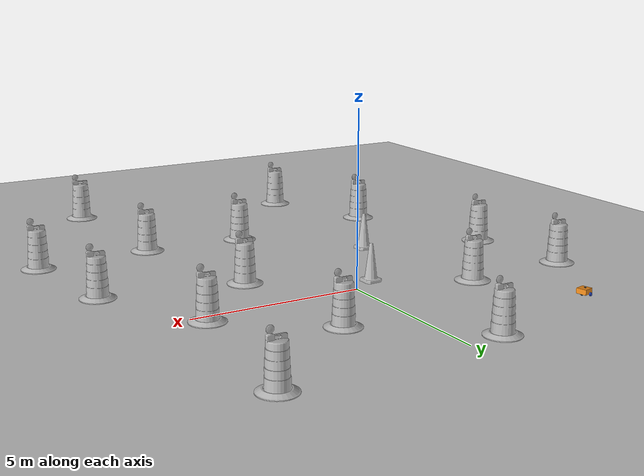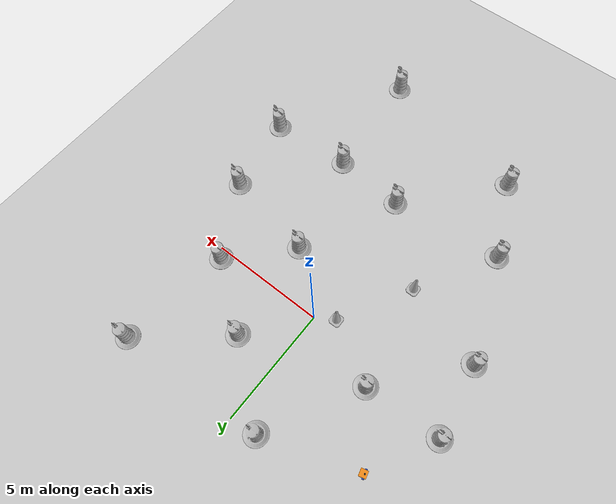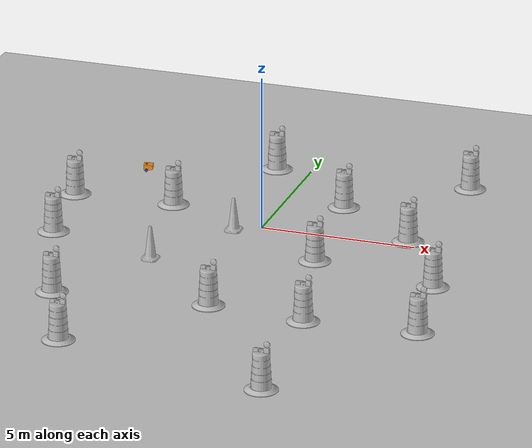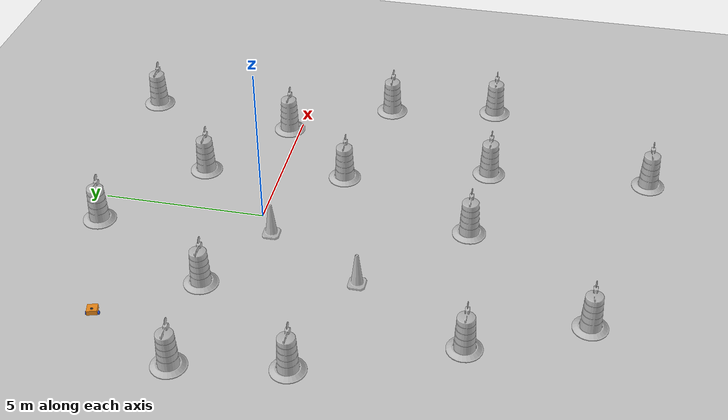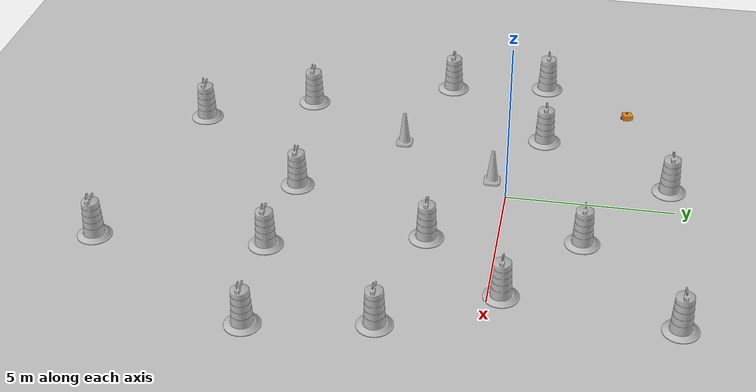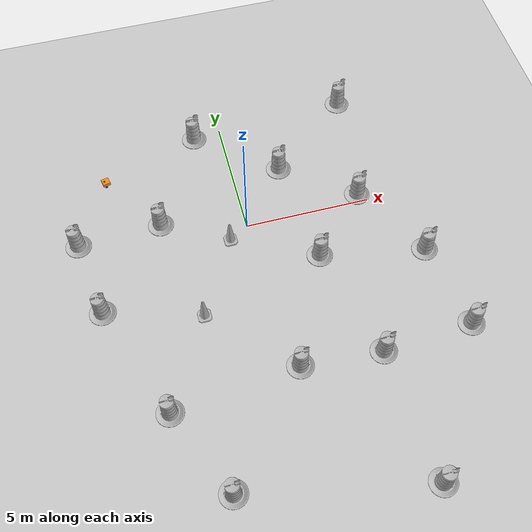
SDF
<sdf version="1.7">
 <world name="default">
  <light name="sun" type="directional">
   <pose>0 0 10 0 -0 0</pose>
   <diffuse>0.8 0.8 0.8 1</diffuse>
   <specular>0.2 0.2 0.2 1</specular>
   <attenuation>
    <range>1000</range>
    <constant>0.9</constant>
    <linear>0.01</linear>
    <quadratic>0.001</quadratic>
   </attenuation>
   <direction>-0.5 0.1 -0.9</direction>
   <spot><inner_angle>0</inner_angle><outer_angle>0</outer_angle><falloff>0</falloff></spot>
  </light>
  <model name="ground_plane">
   <static>1</static>
   <link name="link">
    <collision name="collision">
     <geometry><plane><normal>0 0 1</normal><size>100 100</size></plane></geometry>
     <surface><friction><ode><mu>100</mu><mu2>50</mu2></ode></friction></surface>
    </collision>
    <visual name="visual">
     <cast_shadows>0</cast_shadows>
     <geometry><plane><normal>0 0 1</normal><size>100 100</size></plane></geometry>
     <material>
      <script><uri>file://media/materials/scripts/gazebo.material</uri><name>Gazebo/Grey</name></script>
     </material>
    </visual>
   </link>
  </model>
  <gravity>0 0 -9.8</gravity>
  <magnetic_field>6e-06 2.3e-05 -4.2e-05</magnetic_field>
  <atmosphere type="adiabatic"/>
  <physics type="ode">
   <max_step_size>0.001</max_step_size>
   <real_time_factor>1</real_time_factor>
   <real_time_update_rate>1000</real_time_update_rate>
  </physics>
  <scene><ambient>0.4 0.4 0.4 1</ambient><background>0.7 0.7 0.7 1</background><shadows>1</shadows></scene>
  <audio><device>default</device></audio>
  <spherical_coordinates>
   <surface_model>EARTH_WGS84</surface_model>
   <latitude_deg>0</latitude_deg>
   <longitude_deg>0</longitude_deg>
   <elevation>0</elevation>
   <heading_deg>0</heading_deg>
  </spherical_coordinates>
  <model name="my_bot">
   <link name="base_link">
    <inertial>
     <pose>0.055714 0 0.075 0 -0 0</pose>
     <mass>0.7</mass>
     <inertia>
      <ixx>0.00876312</ixx>
      <ixy>0</ixy>
      <ixz>0.00105</ixz>
      <iyy>0.00980027</iyy>
      <iyz>0</iyz>
      <izz>0.00869839</izz>
     </inertia>
    </inertial>
    <collision name="base_link_fixed_joint_lump__chassis_collision">
     <pose>0.05 0 0.075 0 -0 0</pose>
     <geometry><box><size>0.3 0.3 0.15</size></box></geometry>
    </collision>
    <collision name="base_link_fixed_joint_lump__caster_wheel_collision_1">
     <pose>0.14 0 0 0 -0 0</pose>
     <geometry><sphere><radius>0.05</radius></sphere></geometry>
     <surface><friction><ode><mu>0.001</mu><mu2>0.001</mu2></ode></friction></surface>
    </collision>
    <collision name="base_link_fixed_joint_lump__laser_frame_collision_2">
     <pose>0 0 0.15 0 -0 0</pose>
     <geometry><cylinder><length>0.03</length><radius>0.035</radius></cylinder></geometry>
    </collision>
    <visual name="base_link_fixed_joint_lump__chassis_visual">
     <pose>0.05 0 0.075 0 -0 0</pose>
     <geometry><box><size>0.3 0.3 0.15</size></box></geometry>
     <material>
      <script><name>Gazebo/Orange</name><uri>file://media/materials/scripts/gazebo.material</uri></script>
     </material>
    </visual>
    <visual name="base_link_fixed_joint_lump__caster_wheel_visual_1">
     <pose>0.14 0 0 0 -0 0</pose>
     <geometry><sphere><radius>0.05</radius></sphere></geometry>
     <material>
      <script><name>Gazebo/Black</name><uri>file://media/materials/scripts/gazebo.material</uri></script>
     </material>
    </visual>
    <visual name="base_link_fixed_joint_lump__laser_frame_visual_2">
     <pose>0 0 0.15 0 -0 0</pose>
     <geometry><cylinder><length>0.03</length><radius>0.035</radius></cylinder></geometry>
     <material>
      <script><name>Gazebo/Black</name><uri>file://media/materials/scripts/gazebo.material</uri></script>
     </material>
    </visual>
    <sensor name="laser" type="ray">
     <visualize>1</visualize>
     <update_rate>10</update_rate>
     <ray>
      <scan>
       <horizontal>
        <samples>360</samples>
        <min_angle>-3.14</min_angle>
        <max_angle>3.14</max_angle>
        <resolution>1</resolution>
       </horizontal>
       <vertical><samples>1</samples><min_angle>0</min_angle><max_angle>0</max_angle></vertical>
      </scan>
      <range><min>0.3</min><max>12</max></range>
     </ray>
     <plugin name="laser_controller" filename="libgazebo_ros_ray_sensor.so">
      <ros><argument>~/out:=scan</argument></ros>
      <output_type>sensor_msgs/LaserScan</output_type>
      <frame_name>laser_frame</frame_name>
     </plugin>
     <pose>0 0 0.15 0 -0 0</pose>
    </sensor>
   </link>
   <joint name="left_wheel_joint" type="revolute">
    <pose relative_to="base_link">0 0.175 0 -1.5708 0 0</pose>
    <parent>base_link</parent>
    <child>left_wheel</child>
    <axis>
     <xyz>0 0 1</xyz>
     <limit><lower>-1e+16</lower><upper>1e+16</upper></limit>
     <dynamics><spring_reference>0</spring_reference><spring_stiffness>0</spring_stiffness></dynamics>
    </axis>
   </joint>
   <link name="left_wheel">
    <pose relative_to="left_wheel_joint">0 0 0 0 -0 0</pose>
    <inertial>
     <mass>0.1</mass>
     <inertia>
      <ixx>7.58333e-05</ixx>
      <ixy>0</ixy>
      <ixz>0</ixz>
      <iyy>7.58333e-05</iyy>
      <iyz>0</iyz>
      <izz>0.000125</izz>
     </inertia>
    </inertial>
    <collision name="left_wheel_collision">
     <geometry><cylinder><length>0.04</length><radius>0.05</radius></cylinder></geometry>
    </collision>
    <visual name="left_wheel_visual">
     <geometry><cylinder><length>0.04</length><radius>0.05</radius></cylinder></geometry>
     <material>
      <script><name>Gazebo/Blue</name><uri>file://media/materials/scripts/gazebo.material</uri></script>
     </material>
    </visual>
   </link>
   <joint name="right_wheel_joint" type="revolute">
    <pose relative_to="base_link">0 -0.175 0 1.5708 -0 0</pose>
    <parent>base_link</parent>
    <child>right_wheel</child>
    <axis>
     <xyz>0 0 -1</xyz>
     <limit><lower>-1e+16</lower><upper>1e+16</upper></limit>
     <dynamics><spring_reference>0</spring_reference><spring_stiffness>0</spring_stiffness></dynamics>
    </axis>
   </joint>
   <link name="right_wheel">
    <pose relative_to="right_wheel_joint">0 0 0 0 -0 0</pose>
    <inertial>
     <mass>0.1</mass>
     <inertia>
      <ixx>7.58333e-05</ixx>
      <ixy>0</ixy>
      <ixz>0</ixz>
      <iyy>7.58333e-05</iyy>
      <iyz>0</iyz>
      <izz>0.000125</izz>
     </inertia>
    </inertial>
    <collision name="right_wheel_collision">
     <geometry><cylinder><length>0.04</length><radius>0.05</radius></cylinder></geometry>
    </collision>
    <visual name="right_wheel_visual">
     <geometry><cylinder><length>0.04</length><radius>0.05</radius></cylinder></geometry>
     <material>
      <script><name>Gazebo/Blue</name><uri>file://media/materials/scripts/gazebo.material</uri></script>
     </material>
    </visual>
   </link>
   <static>0</static>
   <plugin name="diff_drive" filename="libgazebo_ros_diff_drive.so">
    <left_joint>left_wheel_joint</left_joint>
    <right_joint>right_wheel_joint</right_joint>
    <wheel_separation>0.297</wheel_separation>
    <wheel_diameter>0.066</wheel_diameter>
    <max_wheel_torque>200</max_wheel_torque>
    <max_wheel_acceleration>10.0</max_wheel_acceleration>
    <odometry_frame>odom</odometry_frame>
    <robot_base_frame>base_link</robot_base_frame>
    <publish_odom>1</publish_odom>
    <publish_odom_tf>1</publish_odom_tf>
    <publish_wheel_tf>1</publish_wheel_tf>
   </plugin>
   <pose>-5.115 3.44107 0.050001 0 4e-06 0.243566</pose>
  </model>
  <model name="Construction Barrel">
   <link name="link">
    <inertial>
     <pose>0 0 0.4 0 -0 0</pose>
     <mass>500</mass>
     <inertia><ixx>51.2096</ixx><iyy>51.2096</iyy><izz>25</izz><ixy>0</ixy><ixz>0</ixz><iyz>0</iyz></inertia>
    </inertial>
    <collision name="collision">
     <geometry><mesh><uri>model://construction_barrel/meshes/construction_barrel.dae</uri></mesh></geometry>
    </collision>
    <visual name="visual">
     <geometry><mesh><uri>model://construction_barrel/meshes/construction_barrel.dae</uri></mesh></geometry>
    </visual>
   </link>
   <pose>2.40573 -2.01668 1e-06 3e-06 2e-06 -2.6e-05</pose>
  </model>
  <model name="Construction Cone">
   <link name="link">
    <collision name="collision">
     <geometry>
      <mesh><scale>10 10 10</scale><uri>model://construction_cone/meshes/construction_cone.dae</uri></mesh>
     </geometry>
    </collision>
    <visual name="visual">
     <geometry>
      <mesh><scale>10 10 10</scale><uri>model://construction_cone/meshes/construction_cone.dae</uri></mesh>
     </geometry>
    </visual>
    <inertial>
     <inertia><ixx>1</ixx><ixy>0</ixy><ixz>0</ixz><iyy>1</iyy><iyz>0</iyz><izz>1</izz></inertia>
     <mass>1</mass>
    </inertial>
   </link>
   <pose>-2.46223 -3.45772 -0 0 -0 0</pose>
  </model>
  <model name="Construction Barrel_0">
   <link name="link">
    <inertial>
     <pose>0 0 0.4 0 -0 0</pose>
     <mass>500</mass>
     <inertia><ixx>51.2096</ixx><iyy>51.2096</iyy><izz>25</izz><ixy>0</ixy><ixz>0</ixz><iyz>0</iyz></inertia>
    </inertial>
    <collision name="collision">
     <geometry><mesh><uri>model://construction_barrel/meshes/construction_barrel.dae</uri></mesh></geometry>
    </collision>
    <visual name="visual">
     <geometry><mesh><uri>model://construction_barrel/meshes/construction_barrel.dae</uri></mesh></geometry>
    </visual>
   </link>
   <pose>-3.28067 0.905911 1e-06 3e-06 2e-06 -2.3e-05</pose>
  </model>
  <model name="Construction Barrel_1">
   <link name="link">
    <inertial>
     <pose>0 0 0.4 0 -0 0</pose>
     <mass>500</mass>
     <inertia><ixx>51.2096</ixx><iyy>51.2096</iyy><izz>25</izz><ixy>0</ixy><ixz>0</ixz><iyz>0</iyz></inertia>
    </inertial>
    <collision name="collision">
     <geometry><mesh><uri>model://construction_barrel/meshes/construction_barrel.dae</uri></mesh></geometry>
    </collision>
    <visual name="visual">
     <geometry><mesh><uri>model://construction_barrel/meshes/construction_barrel.dae</uri></mesh></geometry>
    </visual>
   </link>
   <pose>1.93529 2.40387 1e-06 3e-06 2e-06 -2.2e-05</pose>
  </model>
  <model name="Construction Barrel_2">
   <link name="link">
    <inertial>
     <pose>0 0 0.4 0 -0 0</pose>
     <mass>500</mass>
     <inertia><ixx>51.2096</ixx><iyy>51.2096</iyy><izz>25</izz><ixy>0</ixy><ixz>0</ixz><iyz>0</iyz></inertia>
    </inertial>
    <collision name="collision">
     <geometry><mesh><uri>model://construction_barrel/meshes/construction_barrel.dae</uri></mesh></geometry>
    </collision>
    <visual name="visual">
     <geometry><mesh><uri>model://construction_barrel/meshes/construction_barrel.dae</uri></mesh></geometry>
    </visual>
   </link>
   <pose>0.424973 -6.26137 1e-06 3e-06 2e-06 -2.1e-05</pose>
  </model>
  <model name="Construction Barrel_3">
   <link name="link">
    <inertial>
     <pose>0 0 0.4 0 -0 0</pose>
     <mass>500</mass>
     <inertia><ixx>51.2096</ixx><iyy>51.2096</iyy><izz>25</izz><ixy>0</ixy><ixz>0</ixz><iyz>0</iyz></inertia>
    </inertial>
    <collision name="collision">
     <geometry><mesh><uri>model://construction_barrel/meshes/construction_barrel.dae</uri></mesh></geometry>
    </collision>
    <visual name="visual">
     <geometry><mesh><uri>model://construction_barrel/meshes/construction_barrel.dae</uri></mesh></geometry>
    </visual>
   </link>
   <pose>-6.09236 -2.38366 1e-06 3e-06 2e-06 -2e-05</pose>
  </model>
  <model name="Construction Barrel_4">
   <link name="link">
    <inertial>
     <pose>0 0 0.4 0 -0 0</pose>
     <mass>500</mass>
     <inertia><ixx>51.2096</ixx><iyy>51.2096</iyy><izz>25</izz><ixy>0</ixy><ixz>0</ixz><iyz>0</iyz></inertia>
    </inertial>
    <collision name="collision">
     <geometry><mesh><uri>model://construction_barrel/meshes/construction_barrel.dae</uri></mesh></geometry>
    </collision>
    <visual name="visual">
     <geometry><mesh><uri>model://construction_barrel/meshes/construction_barrel.dae</uri></mesh></geometry>
    </visual>
   </link>
   <pose>-1.1149 4.81944 -0 0 0 -1.8e-05</pose>
  </model>
  <model name="Construction Barrel_5">
   <link name="link">
    <inertial>
     <pose>0 0 0.4 0 -0 0</pose>
     <mass>500</mass>
     <inertia><ixx>51.2096</ixx><iyy>51.2096</iyy><izz>25</izz><ixy>0</ixy><ixz>0</ixz><iyz>0</iyz></inertia>
    </inertial>
    <collision name="collision">
     <geometry><mesh><uri>model://construction_barrel/meshes/construction_barrel.dae</uri></mesh></geometry>
    </collision>
    <visual name="visual">
     <geometry><mesh><uri>model://construction_barrel/meshes/construction_barrel.dae</uri></mesh></geometry>
    </visual>
   </link>
   <pose>4.68295 0.370626 -2e-06 8e-06 -4e-06 -1.7e-05</pose>
  </model>
  <model name="Construction Barrel_6">
   <link name="link">
    <inertial>
     <pose>0 0 0.4 0 -0 0</pose>
     <mass>500</mass>
     <inertia><ixx>51.2096</ixx><iyy>51.2096</iyy><izz>25</izz><ixy>0</ixy><ixz>0</ixz><iyz>0</iyz></inertia>
    </inertial>
    <collision name="collision">
     <geometry><mesh><uri>model://construction_barrel/meshes/construction_barrel.dae</uri></mesh></geometry>
    </collision>
    <visual name="visual">
     <geometry><mesh><uri>model://construction_barrel/meshes/construction_barrel.dae</uri></mesh></geometry>
    </visual>
   </link>
   <pose>3.49202 -6.47253 -1e-06 3e-06 7e-06 -1.5e-05</pose>
  </model>
  <model name="Construction Barrel_7">
   <link name="link">
    <inertial>
     <pose>0 0 0.4 0 -0 0</pose>
     <mass>500</mass>
     <inertia><ixx>51.2096</ixx><iyy>51.2096</iyy><izz>25</izz><ixy>0</ixy><ixz>0</ixz><iyz>0</iyz></inertia>
    </inertial>
    <collision name="collision">
     <geometry><mesh><uri>model://construction_barrel/meshes/construction_barrel.dae</uri></mesh></geometry>
    </collision>
    <visual name="visual">
     <geometry><mesh><uri>model://construction_barrel/meshes/construction_barrel.dae</uri></mesh></geometry>
    </visual>
   </link>
   <pose>-4.41445 -6.81101 0 0 0 -1.5e-05</pose>
  </model>
  <model name="Construction Barrel_8">
   <link name="link">
    <inertial>
     <pose>0 0 0.4 0 -0 0</pose>
     <mass>500</mass>
     <inertia><ixx>51.2096</ixx><iyy>51.2096</iyy><izz>25</izz><ixy>0</ixy><ixz>0</ixz><iyz>0</iyz></inertia>
    </inertial>
    <collision name="collision">
     <geometry><mesh><uri>model://construction_barrel/meshes/construction_barrel.dae</uri></mesh></geometry>
    </collision>
    <visual name="visual">
     <geometry><mesh><uri>model://construction_barrel/meshes/construction_barrel.dae</uri></mesh></geometry>
    </visual>
   </link>
   <pose>3.86246 -11.4472 -0 1e-06 -1e-06 -1.2e-05</pose>
  </model>
  <model name="Construction Barrel_9">
   <link name="link">
    <inertial>
     <pose>0 0 0.4 0 -0 0</pose>
     <mass>500</mass>
     <inertia><ixx>51.2096</ixx><iyy>51.2096</iyy><izz>25</izz><ixy>0</ixy><ixz>0</ixz><iyz>0</iyz></inertia>
    </inertial>
    <collision name="collision">
     <geometry><mesh><uri>model://construction_barrel/meshes/construction_barrel.dae</uri></mesh></geometry>
    </collision>
    <visual name="visual">
     <geometry><mesh><uri>model://construction_barrel/meshes/construction_barrel.dae</uri></mesh></geometry>
    </visual>
   </link>
   <pose>-2.93253 -10.0596 -1e-06 0 5e-06 -1e-05</pose>
  </model>
  <model name="Construction Barrel_10">
   <link name="link">
    <inertial>
     <pose>0 0 0.4 0 -0 0</pose>
     <mass>500</mass>
     <inertia><ixx>51.2096</ixx><iyy>51.2096</iyy><izz>25</izz><ixy>0</ixy><ixz>0</ixz><iyz>0</iyz></inertia>
    </inertial>
    <collision name="collision">
     <geometry><mesh><uri>model://construction_barrel/meshes/construction_barrel.dae</uri></mesh></geometry>
    </collision>
    <visual name="visual">
     <geometry><mesh><uri>model://construction_barrel/meshes/construction_barrel.dae</uri></mesh></geometry>
    </visual>
   </link>
   <pose>6.4255 -2.78385 -2e-06 -0 7e-06 -8e-06</pose>
  </model>
  <model name="Construction Barrel_11">
   <link name="link">
    <inertial>
     <pose>0 0 0.4 0 -0 0</pose>
     <mass>500</mass>
     <inertia><ixx>51.2096</ixx><iyy>51.2096</iyy><izz>25</izz><ixy>0</ixy><ixz>0</ixz><iyz>0</iyz></inertia>
    </inertial>
    <collision name="collision">
     <geometry><mesh><uri>model://construction_barrel/meshes/construction_barrel.dae</uri></mesh></geometry>
    </collision>
    <visual name="visual">
     <geometry><mesh><uri>model://construction_barrel/meshes/construction_barrel.dae</uri></mesh></geometry>
    </visual>
   </link>
   <pose>-6.56716 0.733841 -1e-06 3e-06 1e-05 -7e-06</pose>
  </model>
  <model name="Construction Barrel_12">
   <link name="link">
    <inertial>
     <pose>0 0 0.4 0 -0 0</pose>
     <mass>500</mass>
     <inertia><ixx>51.2096</ixx><iyy>51.2096</iyy><izz>25</izz><ixy>0</ixy><ixz>0</ixz><iyz>0</iyz></inertia>
    </inertial>
    <collision name="collision">
     <geometry><mesh><uri>model://construction_barrel/meshes/construction_barrel.dae</uri></mesh></geometry>
    </collision>
    <visual name="visual">
     <geometry><mesh><uri>model://construction_barrel/meshes/construction_barrel.dae</uri></mesh></geometry>
    </visual>
   </link>
   <pose>6.98296 -6.22702 1e-06 2e-06 3e-06 -6e-06</pose>
  </model>
  <model name="Construction Barrel_13">
   <link name="link">
    <inertial>
     <pose>0 0 0.4 0 -0 0</pose>
     <mass>500</mass>
     <inertia><ixx>51.2096</ixx><iyy>51.2096</iyy><izz>25</izz><ixy>0</ixy><ixz>0</ixz><iyz>0</iyz></inertia>
    </inertial>
    <collision name="collision">
     <geometry><mesh><uri>model://construction_barrel/meshes/construction_barrel.dae</uri></mesh></geometry>
    </collision>
    <visual name="visual">
     <geometry><mesh><uri>model://construction_barrel/meshes/construction_barrel.dae</uri></mesh></geometry>
    </visual>
   </link>
   <pose>5.31108 5.16902 0 0 0 -3e-06</pose>
  </model>
  <model name="Construction Cone_0">
   <link name="link">
    <collision name="collision">
     <geometry>
      <mesh><scale>10 10 10</scale><uri>model://construction_cone/meshes/construction_cone.dae</uri></mesh>
     </geometry>
    </collision>
    <visual name="visual">
     <geometry>
      <mesh><scale>10 10 10</scale><uri>model://construction_cone/meshes/construction_cone.dae</uri></mesh>
     </geometry>
    </visual>
    <inertial>
     <inertia><ixx>1</ixx><ixy>0</ixy><ixz>0</ixz><iyy>1</iyy><iyz>0</iyz><izz>1</izz></inertia>
     <mass>1</mass>
    </inertial>
   </link>
   <pose>-0.774546 -0.482939 -0 0 -0 0.027295</pose>
  </model>
 </world>
</sdf>
